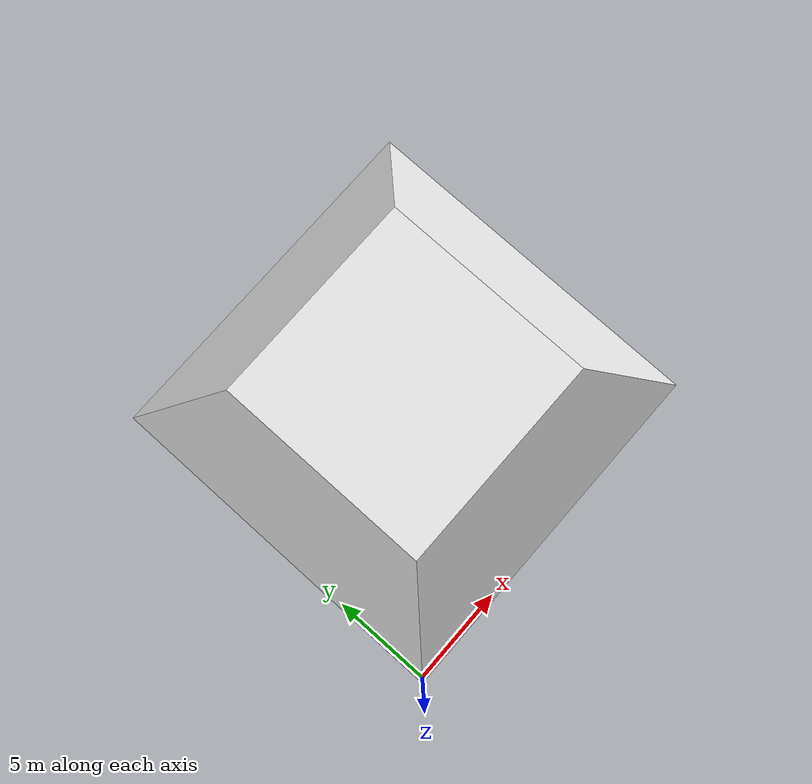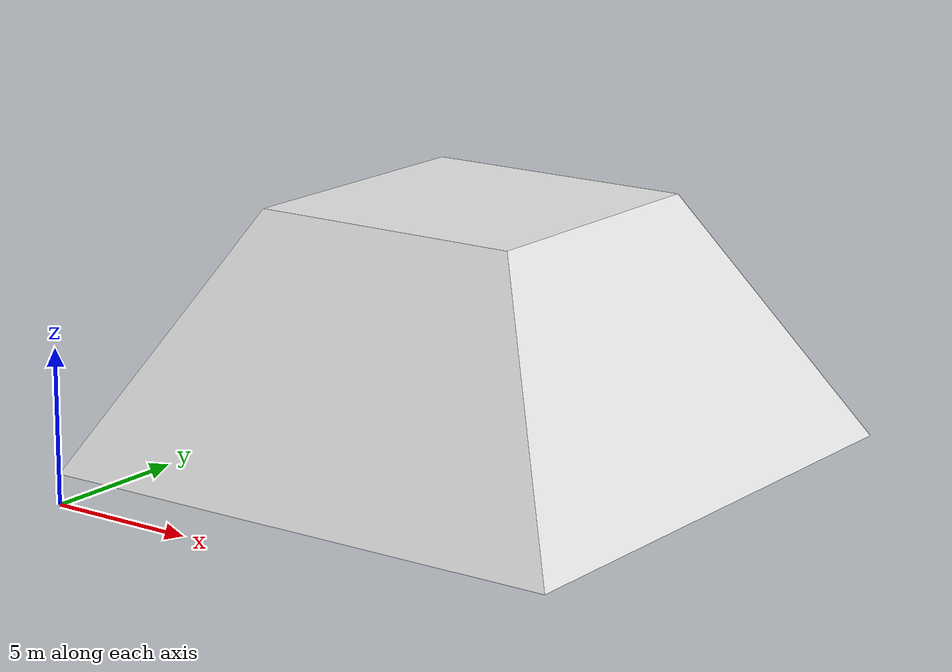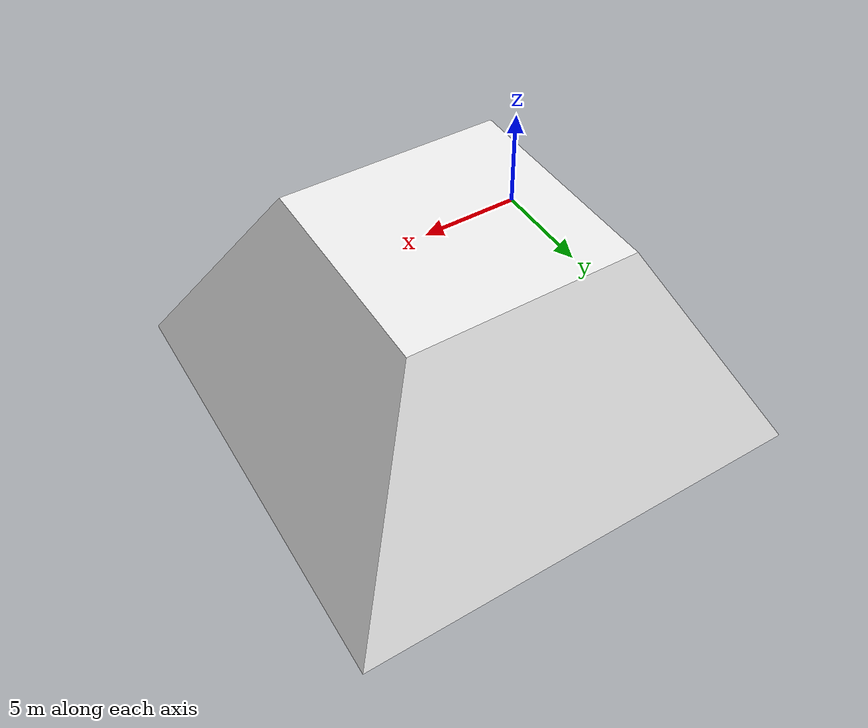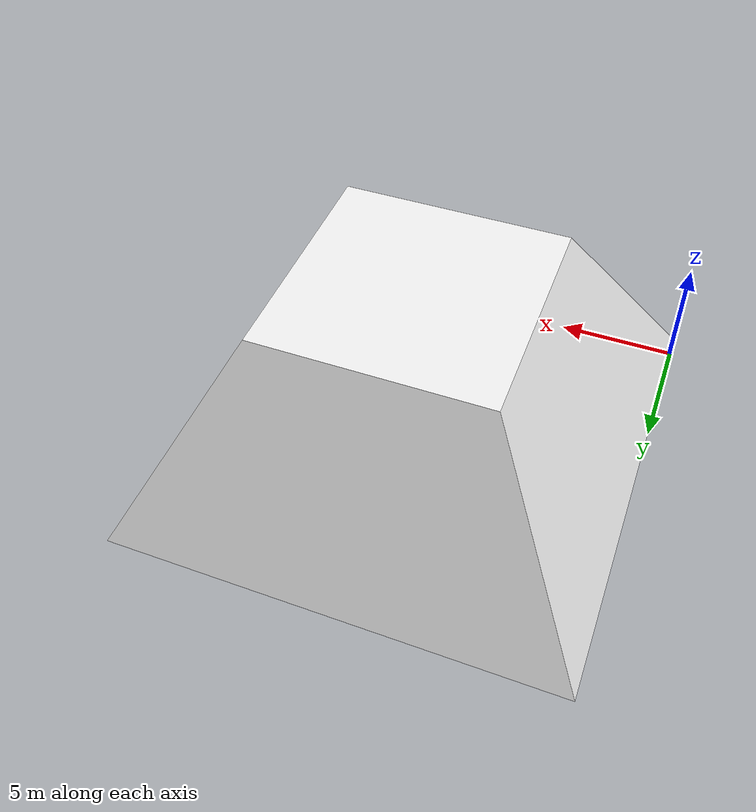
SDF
<?xml version="1.0" ?>
<sdf version="1.6">
  <model name="piramid_qr_cutted">
    <pose>0 0 1 0 0 0</pose>
    <static>true</static>
    <link name="link">
      <visual name="visual">
        <geometry>
          <mesh>
            <scale>12 12 12</scale>
            <uri>model://piramid_qr_cutted/meshes/piramid_qr_cutted.dae</uri>
          </mesh>
        </geometry>
        <material>
          <script>
            <name>Gazebo/White</name>
          </script>
        </material>
      </visual>
    </link>
  </model>
</sdf>
